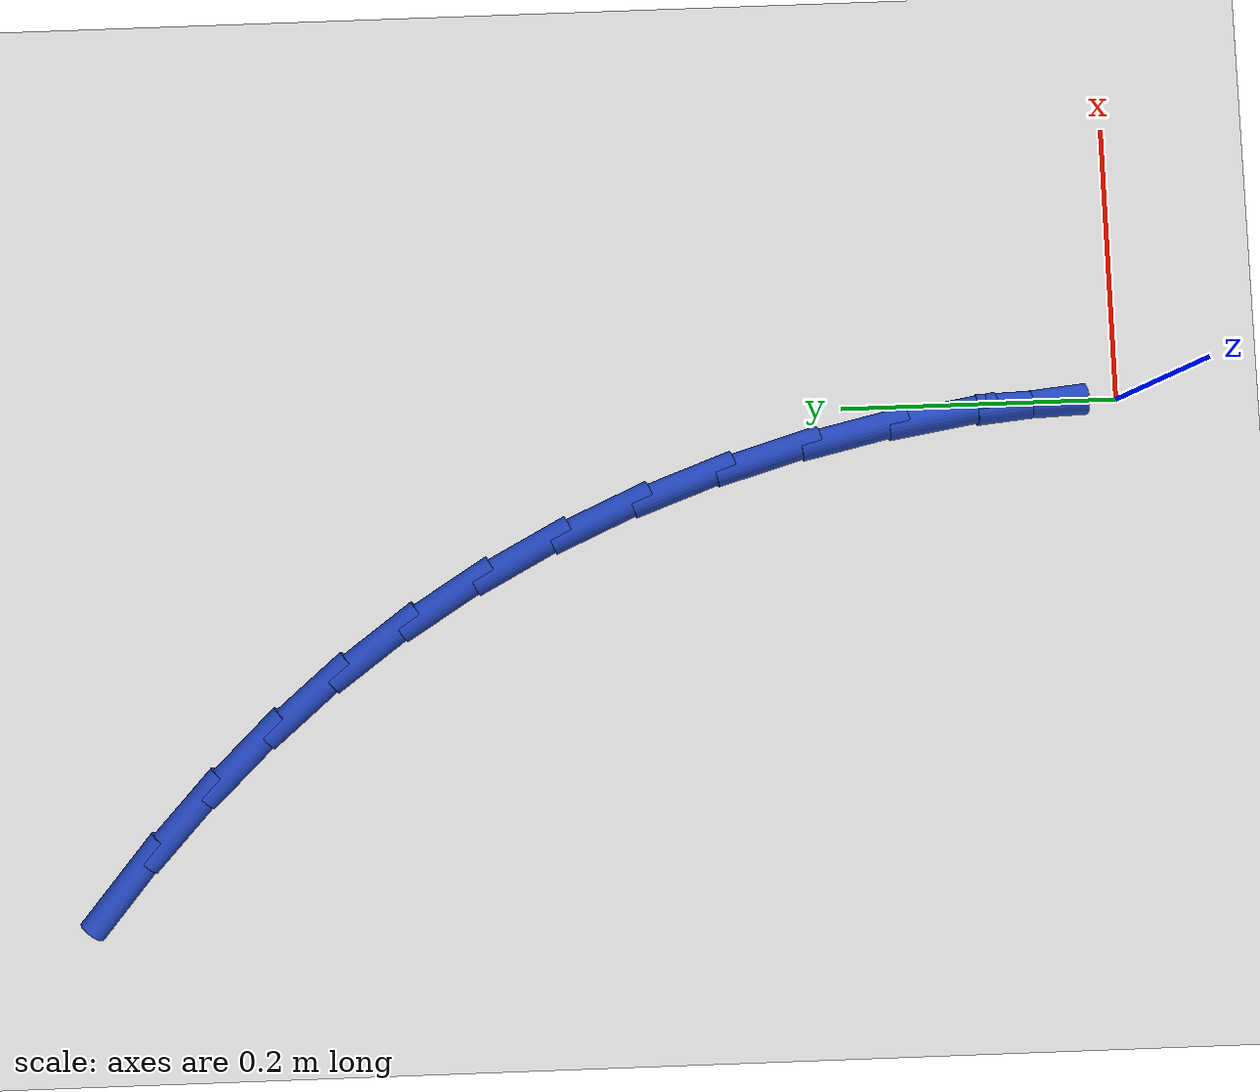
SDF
<sdf version="1.6">
 <world name="default">
  <model name="ground_plane">
   <static>1</static>
   <link name="link">
    <collision name="collision">
     <geometry><plane><normal>0 0 1</normal><size>100 100</size></plane></geometry>
     <surface><friction><ode><mu>100</mu><mu2>50</mu2></ode></friction></surface>
    </collision>
    <visual name="visual">
     <cast_shadows>0</cast_shadows>
     <geometry><plane><normal>0 0 1</normal><size>100 100</size></plane></geometry>
     <material>
      <script><uri>file://media/materials/scripts/gazebo.material</uri><name>Gazebo/WhiteGlow</name></script>
     </material>
    </visual>
   </link>
  </model>
  <model name="line">
   <link name="link_1">
    <pose>-0.0023232876953095363 0.0648762224032126 0.01 0 1.57 -1.4725813164489934</pose>
    <collision name="collision">
     <geometry><cylinder><radius>0.01</radius><length>0.08</length></cylinder></geometry>
    </collision>
    <visual name="visual">
     <material>
      <script><name>Gazebo/Blue</name><uri>file://media/materials/scripts/gazebo.material</uri></script>
     </material>
     <geometry><cylinder><radius>0.01</radius><length>0.08</length></cylinder></geometry>
    </visual>
   </link>
   <link name="link_2">
    <pose>-0.008689766150728508 0.1294895081600854 0.01 0 1.57 -1.4106677118049222</pose>
    <collision name="collision">
     <geometry><cylinder><radius>0.01</radius><length>0.08</length></cylinder></geometry>
    </collision>
    <visual name="visual">
     <material>
      <script><name>Gazebo/Blue</name><uri>file://media/materials/scripts/gazebo.material</uri></script>
     </material>
     <geometry><cylinder><radius>0.01</radius><length>0.08</length></cylinder></geometry>
    </visual>
   </link>
   <link name="link_3">
    <pose>-0.019021457216549416 0.19345830090737423 0.01 0 1.57 -1.3486230012578555</pose>
    <collision name="collision">
     <geometry><cylinder><radius>0.01</radius><length>0.08</length></cylinder></geometry>
    </collision>
    <visual name="visual">
     <material>
      <script><name>Gazebo/Blue</name><uri>file://media/materials/scripts/gazebo.material</uri></script>
     </material>
     <geometry><cylinder><radius>0.01</radius><length>0.08</length></cylinder></geometry>
    </visual>
   </link>
   <link name="link_4">
    <pose>-0.03324038274306491 0.2564010442818353 0.01 0 1.57 -1.285798006210443</pose>
    <collision name="collision">
     <geometry><cylinder><radius>0.01</radius><length>0.08</length></cylinder></geometry>
    </collision>
    <visual name="visual">
     <material>
      <script><name>Gazebo/Blue</name><uri>file://media/materials/scripts/gazebo.material</uri></script>
     </material>
     <geometry><cylinder><radius>0.01</radius><length>0.08</length></cylinder></geometry>
    </visual>
   </link>
   <link name="link_5">
    <pose>-0.05126856458056761 0.31793618192022466 0.01 0 1.57 -1.2215279621127522</pose>
    <collision name="collision">
     <geometry><cylinder><radius>0.01</radius><length>0.08</length></cylinder></geometry>
    </collision>
    <visual name="visual">
     <material>
      <script><name>Gazebo/Blue</name><uri>file://media/materials/scripts/gazebo.material</uri></script>
     </material>
     <geometry><cylinder><radius>0.01</radius><length>0.08</length></cylinder></geometry>
    </visual>
   </link>
   <link name="link_6">
    <pose>-0.07302802457935006 0.3776821574592981 0.01 0 1.57 -1.1551310681919265</pose>
    <collision name="collision">
     <geometry><cylinder><radius>0.01</radius><length>0.08</length></cylinder></geometry>
    </collision>
    <visual name="visual">
     <material>
      <script><name>Gazebo/Blue</name><uri>file://media/materials/scripts/gazebo.material</uri></script>
     </material>
     <geometry><cylinder><radius>0.01</radius><length>0.08</length></cylinder></geometry>
    </visual>
   </link>
   <link name="link_7">
    <pose>-0.0984407845897049 0.43525741453581174 0.01 0 1.57 -1.0859112039312626</pose>
    <collision name="collision">
     <geometry><cylinder><radius>0.01</radius><length>0.08</length></cylinder></geometry>
    </collision>
    <visual name="visual">
     <material>
      <script><name>Gazebo/Blue</name><uri>file://media/materials/scripts/gazebo.material</uri></script>
     </material>
     <geometry><cylinder><radius>0.01</radius><length>0.08</length></cylinder></geometry>
    </visual>
   </link>
   <link name="link_8">
    <pose>-0.12742886646192483 0.4902803967865218 0.01 0 1.57 -1.013168072863477</pose>
    <collision name="collision">
     <geometry><cylinder><radius>0.01</radius><length>0.08</length></cylinder></geometry>
    </collision>
    <visual name="visual">
     <material>
      <script><name>Gazebo/Blue</name><uri>file://media/materials/scripts/gazebo.material</uri></script>
     </material>
     <geometry><cylinder><radius>0.01</radius><length>0.08</length></cylinder></geometry>
    </visual>
   </link>
   <link name="link_9">
    <pose>-0.15991429123094153 0.5423695526255145 0.01 0 1.57 -0.9378092899515647</pose>
    <collision name="collision">
     <geometry><cylinder><radius>0.01</radius><length>0.08</length></cylinder></geometry>
    </collision>
    <visual name="visual">
     <material>
      <script><name>Gazebo/Blue</name><uri>file://media/materials/scripts/gazebo.material</uri></script>
     </material>
     <geometry><cylinder><radius>0.01</radius><length>0.08</length></cylinder></geometry>
    </visual>
   </link>
   <link name="link_10">
    <pose>-0.19579653121656915 0.5912754470160697 0.01 0 1.57 -0.8658040973945799</pose>
    <collision name="collision">
     <geometry><cylinder><radius>0.01</radius><length>0.08</length></cylinder></geometry>
    </collision>
    <visual name="visual">
     <material>
      <script><name>Gazebo/Blue</name><uri>file://media/materials/scripts/gazebo.material</uri></script>
     </material>
     <geometry><cylinder><radius>0.01</radius><length>0.08</length></cylinder></geometry>
    </visual>
   </link>
   <link name="link_11">
    <pose>-0.2348936473892844 0.6372256471135467 0.01 0 1.57 -0.7996526128363878</pose>
    <collision name="collision">
     <geometry><cylinder><radius>0.01</radius><length>0.08</length></cylinder></geometry>
    </collision>
    <visual name="visual">
     <material>
      <script><name>Gazebo/Blue</name><uri>file://media/materials/scripts/gazebo.material</uri></script>
     </material>
     <geometry><cylinder><radius>0.01</radius><length>0.08</length></cylinder></geometry>
    </visual>
   </link>
   <link name="link_12">
    <pose>-0.2770053336589143 0.6805553356362855 0.01 0 1.57 -0.7402784444868524</pose>
    <collision name="collision">
     <geometry><cylinder><radius>0.01</radius><length>0.08</length></cylinder></geometry>
    </collision>
    <visual name="visual">
     <material>
      <script><name>Gazebo/Blue</name><uri>file://media/materials/scripts/gazebo.material</uri></script>
     </material>
     <geometry><cylinder><radius>0.01</radius><length>0.08</length></cylinder></geometry>
    </visual>
   </link>
   <link name="link_13">
    <pose>-0.32193128393528575 0.7215996953026264 0.01 0 1.57 -0.6882183119501203</pose>
    <collision name="collision">
     <geometry><cylinder><radius>0.01</radius><length>0.08</length></cylinder></geometry>
    </collision>
    <visual name="visual">
     <material>
      <script><name>Gazebo/Blue</name><uri>file://media/materials/scripts/gazebo.material</uri></script>
     </material>
     <geometry><cylinder><radius>0.01</radius><length>0.08</length></cylinder></geometry>
    </visual>
   </link>
   <link name="link_111">
    <pose>-0.0023424209858939928 0.06488945264269698 0.01 0 1.57 -1.5347133548091798</pose>
    <collision name="collision">
     <geometry><cylinder><radius>0.01</radius><length>0.08</length></cylinder></geometry>
    </collision>
    <visual name="visual">
     <material>
      <script><name>Gazebo/Blue</name><uri>file://media/materials/scripts/gazebo.material</uri></script>
     </material>
     <geometry><cylinder><radius>0.01</radius><length>0.08</length></cylinder></geometry>
    </visual>
   </link>
  </model>
 </world>
</sdf>
